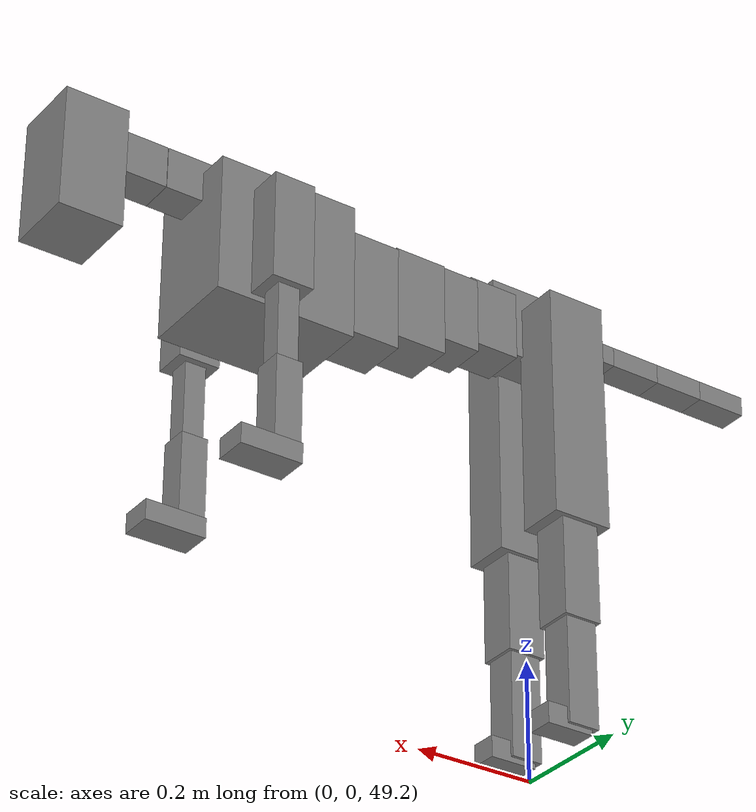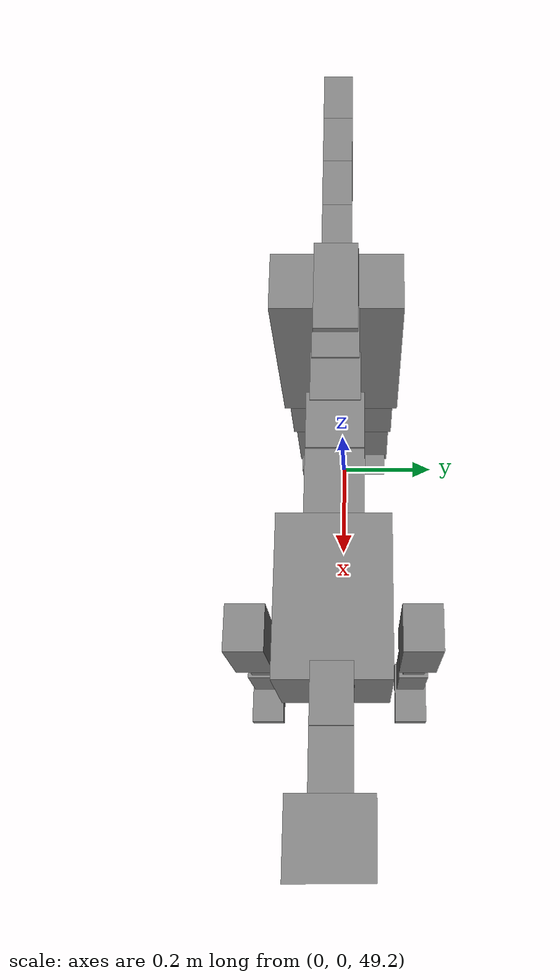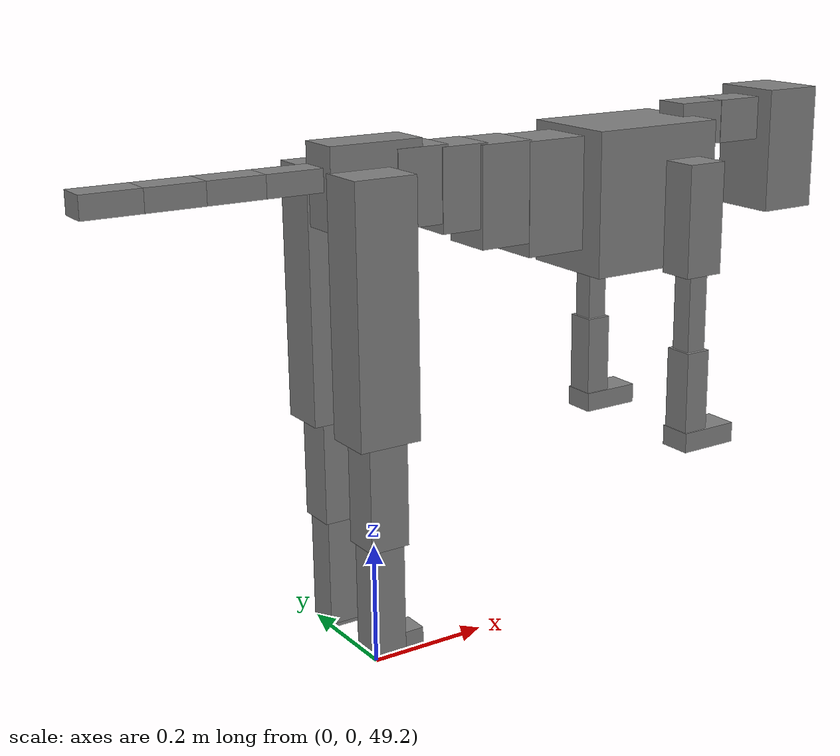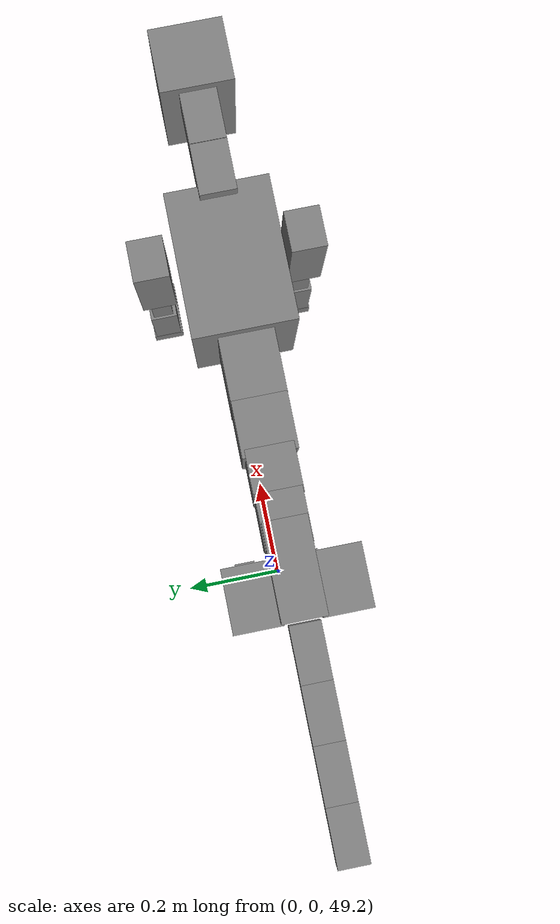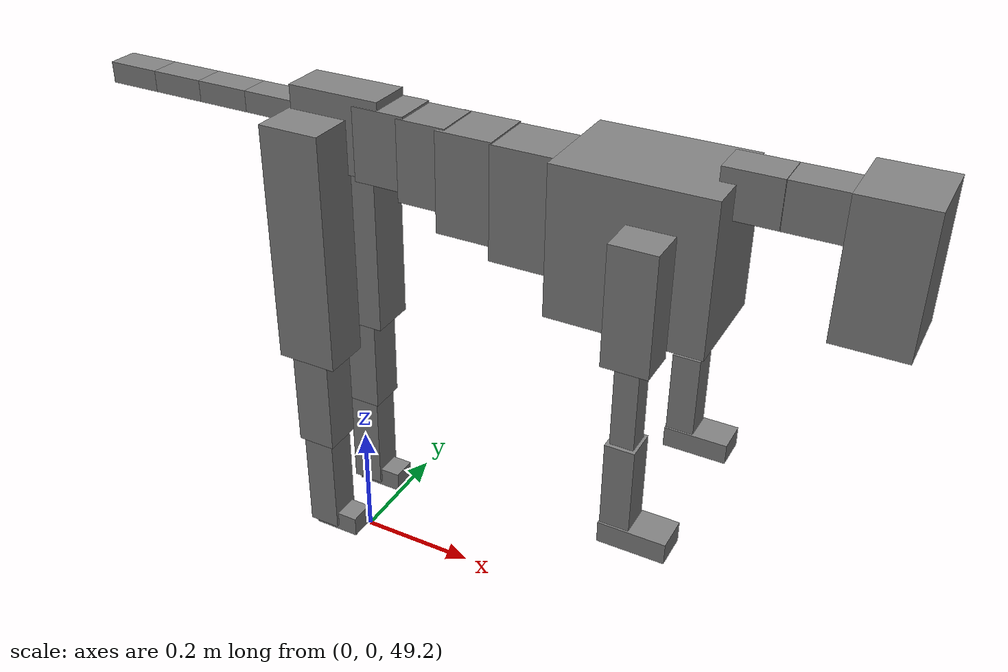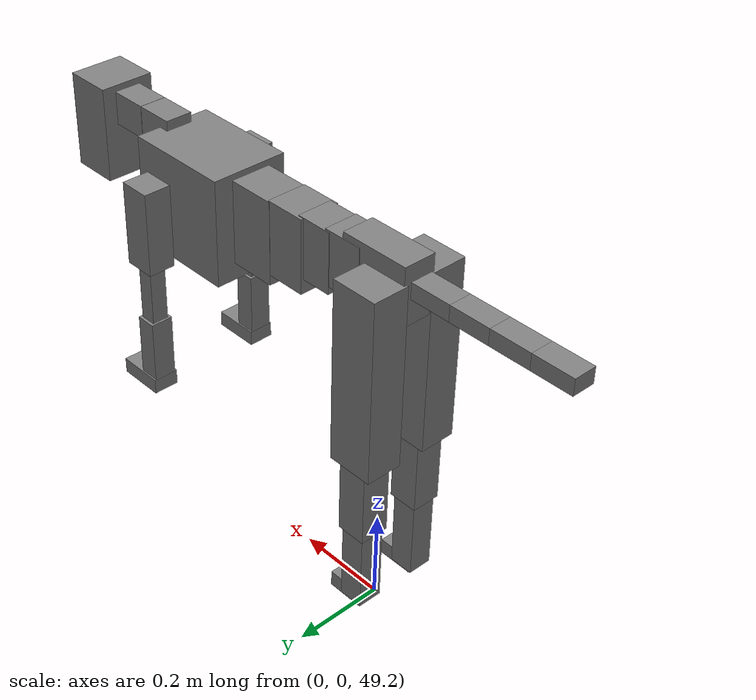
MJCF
<mujoco model="dog">

    <default>
        <joint armature="0.02" stiffness="1" damping="0.2" limited="true"/>
        <geom condim="3" friction="1 0.05 0.05" margin="0.01"/>
        <motor ctrllimited="true" ctrlrange="-1.0 1.0" forcelimited="true" gear="50"/>
    </default>

    <compiler inertiafromgeom="true" angle="radian"/>

    <option timestep="0.016" iterations="50" tolerance="1e-10" solver="Newton" jacobian="dense" cone="pyramidal"/>

    <size nconmax="20000" njmax="60000" nstack="5000000"/>
    <visual>
        <map force="0.1" zfar="30"/>
        <rgba haze="0.15 0.25 0.35 1"/>
        <quality shadowsize="2048"/>
        <global offwidth="800" offheight="800"/>
    </visual>

    <asset>
        <texture type="skybox" builtin="gradient" rgb1="0.3 0.5 0.7" rgb2="0 0 0" width="512" height="512"/>
        <texture name="texplane" type="2d" builtin="checker" rgb1=".2 .3 .4" rgb2=".1 0.15 0.2" width="512" height="512"
                 mark="cross" markrgb=".8 .8 .8"/>
        <texture name="texgeom" type="cube" builtin="flat" mark="cross" width="127" height="1278" rgb1="0.8 0.6 0.4"
                 rgb2="0.8 0.6 0.4" markrgb="1 1 1" random="0.01"/>

        <material name="matplane" reflectance="0.3" texture="texplane" texrepeat="1 1" texuniform="true"/>
        <material name="matgeom" texture="texgeom" texuniform="true" rgba="0.8 0.6 .4 1"/>
    </asset>

    <worldbody>
        <geom name="floor" pos="0 0 0" size="0 0 .25" type="plane" material="matplane" condim="3"/>

        <light directional="false" diffuse=".2 .2 .2" specular="0 0 0" pos="0 0 5" dir="0 0 -1" castshadow="false"/>
        <light mode="targetbodycom" target="torso" directional="false" diffuse=".8 .8 .8" specular="0.3 0.3 0.3"
               pos="0 0 4.0" dir="0 0 -1"/>

        <body name="root" pos="0 0 50">
            <freejoint name="root_1"/>
            <geom type="box" pos="0 0 -0.02" size="0.0774  0.0358  0.063" density="2030"/>

            <body name="spine1" pos="0.054 0 0">
                <joint name="spine1_y" axis="0 1 0" range="0 0.7" limited="true"/>
                <geom type="box" pos="0.02375 0 -0.03" size="0.04375  0.0375  0.05985" density="2030"/>

                <body name="spine2" pos="0.0612 0 0">
                    <joint name="spine2_y" axis="0 1 0" range="-0.15 0.15" limited="true"/>
                    <geom type="box" pos="0.03555  0  -0.04" size="0.04055  0.039  0.06615" density="2030"/>

                    <body name="spine3" pos="0.0730 0 0">
                        <joint name="spine3_y" axis="0 1 0" range="-0.15 0.15" limited="true"/>
                        <geom type="box" pos="0.03555  0  -0.057" size="0.04555  0.0445  0.081" density="2030"/>

                        <body name="spine4" pos="0.0780 0 0">
                            <joint name="spine4_y" axis="0 1 0" range="-0.15 0.15" limited="true"/>
                            <geom type="box" pos="0.05265  0  -0.07" size="0.05265  0.045  0.09135" density="2030"/>

                            <body name="torso" pos="0.1082 0 0">
                                <joint name="torso_y" axis="0 1 0" range="-0.15 0.15" limited="true"/>
                                <geom type="box" pos="0.11925  0  -0.085" size="0.11925  0.085  0.11745"
                                      density="2030"/>

                                <body name="neck1" pos="0.2160  0   0.0180">
                                    <joint name="neck1_y" axis="0 1 0" range="-1.2  -1" limited="true"/>
                                    <geom type="box" pos="0.0423  0  0" size="0.0423  0.03  0.036" density="2325"/>

                                    <body name="neck2" pos="0.0853  0  0">
                                        <joint name="neck2_y" axis="0 1 0" range="0.1  0" limited="true"/>
                                        <geom type="box" pos="0.0423  0  0" size="0.0423  0.03  0.036" density="2325"/>

                                        <body name="head" pos="0.0853  0  0">
                                            <joint name="head_y" axis="0 1 0" range="-0.3  -0.2" limited="true"/>
                                            <geom type="box" pos="0.0531  0  -0.055" size="0.0531  0.06  0.1044"
                                                  density="4030"/>

                                        </body>
                                    </body>
                                </body>

                                <body name="front_shoulder" pos="0.156  0   -0.0480">
                                    <joint name="front_shoulder_y" axis="0 1 0" range="-1 1.5" limited="true"/>
                                    <geom type="box" pos="0 0.13 -0.0650" size="0.0349  0.0298  0.0917" density="1158"/>
                                    <geom type="box" pos="0 -0.13 -0.0650" size="0.0349  0.0298  0.0917"
                                          density="1158"/>

                                    <body name="front_elbow" pos="0  0  -0.1301">
                                        <joint name="front_elbow_y" axis="0 1 0" range="-2 0" limited="true"/>
                                        <geom type="box" pos="0 0.13 -0.0840" size="0.0179  0.0183  0.0840"
                                              density="1081"/>
                                        <geom type="box" pos="0 -0.13 -0.0840" size="0.0179  0.0183  0.0840"
                                              density="1081"/>

                                        <body name="front_wrist" pos="0  0  -0.1680">
                                            <joint name="front_wrist_y" axis="0 1 0" range="-0.2 0" limited="true"/>
                                            <geom type="box" pos="0 0.13 -0.0691" size="0.0224  0.0248  0.0822"
                                                  density="1664"/>
                                            <geom type="box" pos="0 -0.13 -0.0691" size="0.0224  0.0248  0.0822"
                                                  density="1664"/>

                                            <body name="front_finger_end" pos="0  0  -0.1382">
                                                <joint name="front_finger_y" axis="0 1 0" range="-0.4 1"
                                                       limited="true"/>
                                                <geom type="box" pos="0.0281  0.13  -0.0019"
                                                      size="0.0515  0.0281  0.0169" density="1515"/>
                                                <geom type="box" pos="0.0281  -0.13  -0.0019"
                                                      size="0.0515  0.0281  0.0169" density="1515"/>

                                            </body>

                                        </body>
                                    </body>
                                </body>

                            </body>
                        </body>
                    </body>
                </body>
            </body>

            <body name="back_hip" pos="-0.03 0 -0.018">
                <joint name="back_hip_y" axis="0 1 0" range="-1.5 0.3" limited="true"/>
                <geom type="box" pos="0 0.07 -0.1774" size="0.0511  0.0401  0.2002" density="1154"/>
                <geom type="box" pos="0 -0.07 -0.1774" size="0.0511  0.0401  0.2002" density="1154"/>

                <body name="back_knee" pos="0  0  -0.3548">
                    <joint name="back_knee_y" axis="0 1 0" range="0 2.8" limited="true"/>
                    <geom type="box" pos="0 0.07 -0.0867" size="0.0326  0.0322  0.1023" density="1227"/>
                    <geom type="box" pos="0 -0.07 -0.0867" size="0.0326  0.0322  0.1023" density="1227"/>

                    <body name="back_ankle" pos="0  0  -0.1734">
                        <joint name="back_ankle_y" axis="0 1 0" range="-2.2 0" limited="true"/>
                        <geom type="box" pos="0 0.07 -0.0903" size="0.0270  0.0270  0.1015" density="1284"/>
                        <geom type="box" pos="0 -0.07 -0.0903" size="0.0270  0.0270  0.1015" density="1284"/>

                        <body name="back_toe_end" pos="0  0  -0.1805">
                            <joint name="back_toe_y" axis="0 1 0" range="-0.4 1" limited="true"/>
                            <geom type="box" pos="0.0218  0.07  -0.0026" size="0.0400  0.0218  0.0176" density="1515"/>
                            <geom type="box" pos="0.0218  -0.07  -0.0026" size="0.0400  0.0218  0.0176" density="1515"/>

                        </body>
                    </body>
                </body>
            </body>

            <body name="tail1" pos="-0.074 0 -0.006">
                <joint name="tail1_y" axis="0 1 0" range="-0.2 0.2" limited="true"/>
                <geom type="box" pos="-0.0536  0  0" size="0.045  0.025  0.0175" density="1587"/>

                <body name="tail2" pos="-0.09 0 0">
                    <joint name="tail2_y" axis="0 1 0" range="-0.2 0.2" limited="true"/>
                    <geom type="box" pos="-0.0536  0  0" size="0.045  0.025  0.0175" density="1587"/>

                    <body name="tail3" pos="-0.09 0 0">
                        <joint name="tail3_y" axis="0 1 0" range="-0.2 0.2" limited="true"/>
                        <geom type="box" pos="-0.0536  0  0" size="0.045  0.025  0.0175" density="1587"/>

                        <body name="tail4" pos="-0.09 0 0">
                            <joint name="tail4_y" axis="0 1 0" range="-0.2 0.2" limited="true"/>
                            <geom type="box" pos="-0.0536  0  0" size="0.045  0.025  0.0175" density="1587"/>

                        </body>
                    </body>
                </body>
            </body>
        </body>
    </worldbody>

    <actuator>
        <motor joint="spine1_y" forcerange="-150 150     "/>
        <motor joint="spine2_y" forcerange="-150 150     "/>
        <motor joint="spine3_y" forcerange="-150 150     "/>
        <motor joint="spine4_y" forcerange="-150 150     "/>
        <motor joint="torso_y" forcerange="-150 150     "/>
        <motor joint="neck1_y" forcerange="-100 100       "/>
        <motor joint="neck2_y" forcerange="-100 100       "/>
        <motor joint="head_y" forcerange="-150 150       "/>
        <motor joint="front_shoulder_y" forcerange="-130.56 168.23"/>
        <motor joint="front_elbow_y" forcerange="-114.46 118.80"/>
        <motor joint="front_wrist_y" forcerange="-146.85 51.90"/>
        <motor joint="front_finger_y" forcerange="-78.91 30.85"/>
        <motor joint="back_hip_y" forcerange="-338.06 396.75"/>
        <motor joint="back_knee_y" forcerange="-281.52 386.39"/>
        <motor joint="back_angle_y" forcerange="-247.14 84.63"/>
        <motor joint="back_toe_y" forcerange="-39.07 55.45"/>
        <motor joint="tail1_y" forcerange="-50 50     "/>
        <motor joint="tail2_y" forcerange="-50 50     "/>
        <motor joint="tail3_y" forcerange="-50 50     "/>
        <motor joint="tail4_y" forcerange="-50 50     "/>
    </actuator>
</mujoco>
